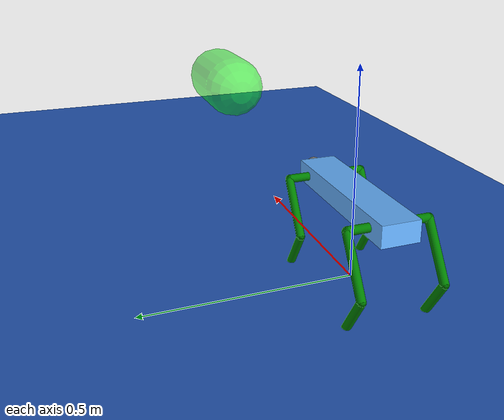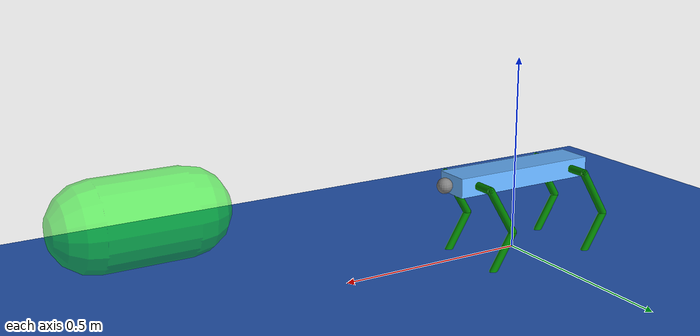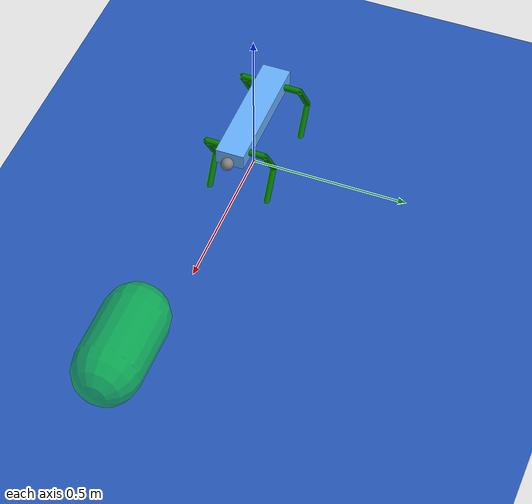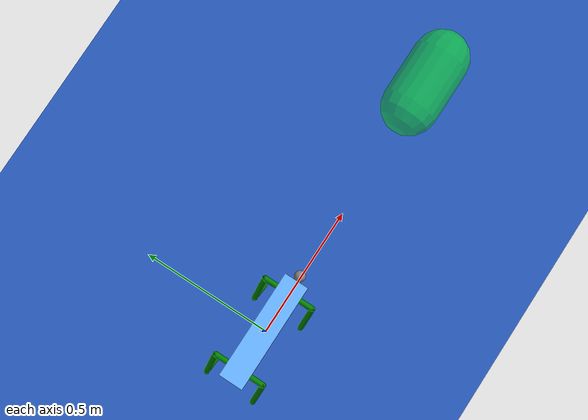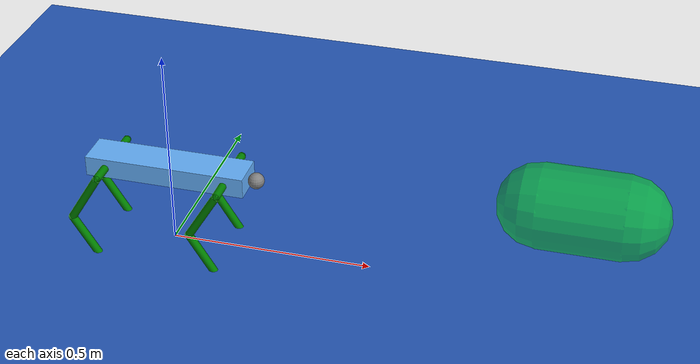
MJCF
<mujoco>
    <include file="../common.xml"/>

    <size memory="1M" />

    <default>
        <default class="circuit">
          <geom rgba="0.6 0 0.6 1" />
        </default>
    </default>

    <custom>
        <text name="task_transition" data="Quadruped|Walk|Path" />
        <numeric name="agent_planner" data="2 " />
        <numeric name="agent_horizon" data="0.35" />
        <numeric name="agent_timestep" data="0.01" />
        <numeric name="sampling_spline_points" data="3" />
        <numeric name="sampling_trajectories" data="60"/>
        <numeric name="sampling_exploration" data="0.04" />
        <numeric name="gradient_spline_points" data="5" />

        <numeric name="residual_select_Gait" data="1"/>
        <text name="residual_list_Gait" data="Stand|Walk|Trot|Canter|Gallop"/>
        <numeric name="residual_select_Gait switch" data="0"/>
        <text name="residual_list_Gait switch" data="Manual|Automatic"/>
        <numeric name="residual_Cadence" data="2 0 4" />
        <numeric name="residual_Amplitude" data=".06 0 0.1" />
        <numeric name="residual_Duty ratio" data="0 0 1"/>
        <numeric name="residual_Walk speed" data="0 0 4"/>
        <numeric name="residual_Walk turn" data="0 -2 2"/>
        <numeric name="residual_Heading" data="0 -3.14 3.14" />
        <numeric name="residual_select_Path stage" data="0" />
        <text name="residual_list_Path stage" data="Loop|Stage1|Stage2|Stage3|Stage4|Stage5" />
    </custom>

    <visual>
        <headlight diffuse="0.6 0.6 0.6"  ambient="0.3 0.3 0.3" specular="0 0 0"/>
        <global azimuth="-90"/>
    </visual>

    <statistic extent="1" center="0 0 .3"/>

    <worldbody>
        <light pos="0 0 1.5" dir="0 0 -1" diffuse="0.5 0.5 0.5" specular="0.3 0.3 0.3"
        directional="true" castshadow="false"/>

        <geom name="floor" size="0 0 0.1" pos="0 0 -0.01" type="plane" material="blue_grid"/>

        <body name="goal" mocap="true" pos="1 0 0.25" quat="1 0 0 0">
            <geom type="capsule" size="0.1 0.1 0.05" contype="0" conaffinity="0" rgba="0 1 0 .5" fromto="-0.1 0 0 0.1 0 0"/>
        </body>

    </worldbody>

    <include file="robot_3_dof.xml"/>

    <actuator>
        <motor name="FL_Abduction" joint="AbductionMotor_FL" gear="1" ctrllimited="true" ctrlrange="-10 10"/>
        <motor name="FL_Up" joint="HipMotor_FL" gear="1" ctrllimited="true" ctrlrange="-10 10"/>
        <motor name="FL_Down" joint="KneeMotor_FL" gear="1" ctrllimited="true" ctrlrange="-10 10"/>

        <motor name="FR_Abduction" joint="AbductionMotor_FR" gear="1" ctrllimited="true" ctrlrange="-10 10"/>
        <motor name="FR_Up" joint="HipMotor_FR" gear="1" ctrllimited="true" ctrlrange="-10 10"/>
        <motor name="FR_Down" joint="KneeMotor_FR" gear="1" ctrllimited="true" ctrlrange="-10 10"/>

        <motor name="RL_Abduction" joint="AbductionMotor_RL" gear="1" ctrllimited="true" ctrlrange="-10 10"/>
        <motor name="RL_Up" joint="HipMotor_RL" gear="1" ctrllimited="true" ctrlrange="-10 10"/>
        <motor name="RL_Down" joint="KneeMotor_RL" gear="1" ctrllimited="true" ctrlrange="-10 10"/>

        <motor name="RR_Abduction" joint="AbductionMotor_RR" gear="1" ctrllimited="true" ctrlrange="-10 10"/>
        <motor name="RR_Up" joint="HipMotor_RR" gear="1" ctrllimited="true" ctrlrange="-10 10"/>
        <motor name="RR_Down" joint="KneeMotor_RR" gear="1" ctrllimited="true" ctrlrange="-10 10"/>
    </actuator>

    <sensor>
        <user name="Upright" dim="3" user="6 1 0 3 0.05" />
        <user name="Height" dim="1" user="6 1 0 3 0.04" />
        <user name="Position" dim="3" user="2 0.2 0 3 0.1" />
        <user name="Gait" dim="4" user="6 2 0 10 0.03" />
        <user name="Balance" dim="2" user="2 0.2 0 0.3 0.1" />
        <user name="Effort" dim="12" user="0 0.06 0.0 0.1" />
        <user name="Posture" dim="12" user="0 0.02 0.0 0.1" />
        <user name="Orientation" dim="2" user="0 0.1 0 2" />
        <user name="Angmom" dim="3" user="0 0 0 .03" />
        <user name="Consistency" dim="1" user="6 0.1 0 1 0.05"/>

        <framepos name="trace0" objtype="site" objname="head" />
        <subtreecom name="torso_subtreecom" body="main_body" />
        <subtreelinvel name="torso_subtreelinvel" body="main_body"/>
        <subtreeangmom name="torso_angmom" body="main_body"/>
        <framequat     name="orientation" objtype="body" objname="main_body"/>
        <touch name="Foot_FL_sensor" site="Foot_FL_contact"/>
        <touch name="Foot_FR_sensor" site="Foot_FR_contact"/>
        <touch name="Foot_RL_sensor" site="Foot_RL_contact"/>
        <touch name="Foot_RR_sensor" site="Foot_RR_contact"/>
    </sensor>

    <keyframe>
        <!-- Path Stages -->
        <key mpos="1 0 0.25" mquat="1 0 0 0" />

        <!-- circuit -->

        <!-- turn 0.0m -->
        <key mpos="0.50 -5.00 0.25" mquat="0.707106781186548 0 0 -0.707106781186547" />

        <!-- turn 0.5 m -->

        <!-- inclination 5 deg, goalY:0.685, goalX: 5,981 -->

        <!-- inclination 10 deg goalY:1.118, goalX: 5,924-->

        <!-- inclination 15 deg goalY:1.544, goalX: 5,824-->

        <!-- last twelve values are the robot joint angles -->
        <key name="home"
        qpos="0 0 0.2
              1 0 0 0
              0 0 0
              0 0 0
              0 0 0
              0 0 0"/>

      </keyframe>

</mujoco>

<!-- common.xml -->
<mujoco>

    <visual>
        <headlight ambient=".4 .4 .4" diffuse=".8 .8 .8" specular="0.1 0.1 0.1"/>
        <map znear=".01"/>
        <quality shadowsize="2048"/>
        <global elevation="-15"/>
    </visual>

    <asset>
        <texture name="blue_grid" type="2d" builtin="checker" rgb1=".02 .14 .44" rgb2=".27 .55 1" width="300" height="300" mark="edge" markrgb="1 1 1"/>
        <material name="blue_grid" texture="blue_grid" texrepeat="1 1" texuniform="true" reflectance=".2"/>

        <texture name="grey_grid" type="2d" builtin="checker" rgb1=".26 .26 .26" rgb2=".6 .6 .6" width="300" height="300" mark="edge" markrgb="1 1 1"/>
        <material name="grey_grid" texture="grey_grid" texrepeat="1 1" texuniform="true" reflectance=".2"/>
        <texture name="skybox" type="skybox" builtin="gradient" rgb1=".66 .79 1" rgb2=".9 .91 .93" width="800" height="800"/>

        <material name="self" rgba=".7 .5 .3 1"/>
        <material name="self_default" rgba=".7 .5 .3 1"/>
        <material name="self_highlight" rgba="0 .5 .3 1"/>
        <material name="effector" rgba=".7 .4 .2 1"/>
        <material name="effector_default" rgba=".7 .4 .2 1"/>
        <material name="effector_highlight" rgba="0 .5 .3 1"/>
        <material name="decoration" rgba=".2 .6 .3 1"/>
        <material name="eye" rgba="0 .2 1 1"/>
        <material name="target" rgba=".6 .3 .3 1"/>
        <material name="target_default" rgba=".6 .3 .3 1"/>
        <material name="target_highlight" rgba=".6 .3 .3 .4"/>
        <material name="site" rgba=".5 .5 .5 .3"/>
    </asset>

    <size memory="1M"/>

    <statistic extent="0.4" center="0.3 0.1 0"/>

    <visual>
        <quality shadowsize="8192"/>
        <global azimuth="180" elevation="-30"/>
    </visual>

    <default>
        <geom friction="1.0"/>
    </default>

    <compiler angle="radian" autolimits="true"/>

    <asset>
        <mesh name="apple" file="../../shared_assets/apple/apple.obj" />
        <mesh name="apple_contact0" file="../../shared_assets/apple/contact0.stl"  />
        <mesh name="apple_contact1" file="../../shared_assets/apple/contact1.stl"  />

        <mesh name="doorknob" file="../../shared_assets/doorknob/doorknob.obj" />

        <mesh name="flashlight" file="../../shared_assets/flashlight/flashlight.obj" />
        <mesh name="flashlight_contact0" file="../../shared_assets/flashlight/contact0.stl"  />
        <mesh name="flashlight_contact1" file="../../shared_assets/flashlight/contact1.stl"  />

        <mesh name="hammer" file="../../shared_assets/hammer/hammer.obj" />
        <mesh name="hammer_contact0" file="../../shared_assets/hammer/contact0.stl"  />
        <mesh name="hammer_contact1" file="../../shared_assets/hammer/contact1.stl"  />

        <mesh name="phone" file="../../shared_assets/phone/phone.obj" />
        <mesh name="phone_contact0" file="../../shared_assets/phone/contact0.stl"  />
        <mesh name="phone_contact1" file="../../shared_assets/phone/contact1.stl"  />
        <mesh name="phone_contact2" file="../../shared_assets/phone/contact2.stl"  />

        <mesh name="stapler" file="../../shared_assets/stapler/stapler.obj" />
        <mesh name="stapler_contact0" file="../../shared_assets/stapler/contact0.stl"  />
        <mesh name="stapler_contact1" file="../../shared_assets/stapler/contact1.stl"  />
        <mesh name="stapler_contact2" file="../../shared_assets/stapler/contact2.stl"  />
        <mesh name="stapler_contact3" file="../../shared_assets/stapler/contact3.stl"  />
        <mesh name="stapler_contact4" file="../../shared_assets/stapler/contact4.stl"  />

        <mesh name="waterbottle" file="../../shared_assets/waterbottle/waterbottle.obj" />
        <mesh name="waterbottle_contact0" file="../../shared_assets/waterbottle/contact0.stl"  />
        <mesh name="waterbottle_contact1" file="../../shared_assets/waterbottle/contact1.stl"  />
    </asset>

</mujoco>

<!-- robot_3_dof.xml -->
<mujoco>

    <default>

        <default class="motor">

            <default class="abduction_motor">
                <joint limited="true" range="-20 30" type="hinge"
                    pos="0 0 0" axis="1 0 0" stiffness="0" damping="0.1" armature="0.0065"
                    group="1" />
            </default>

            <default class="hip_motor">
                <joint limited="true" range="-40 40" type="hinge"
                    pos="0 0 0" axis="0 1 0" stiffness="0" damping="0.1" armature="0.0065"
                    group="1" />
            </default>

            <default class="knee_motor">
                <joint limited="true" range="-30 30" type="hinge"
                    pos="0 0 0" axis="0 1 0" stiffness="0" damping="0.1" armature="0.0065"
                    group="1" />
            </default>

            <default class="AbductionGeom">
                <geom type="capsule" mass="0.001" size="0.01" rgba="0.0 0.5 0.0 1"
                    group="1"/>
            </default>

            <default class="UpLeg">
                <geom type="capsule" mass="0.05" size="0.01" fromto="0 0 0 -0.14 0 0" rgba="0.0 0.5 0.0 1"
                    group="1" />
            </default>

            <default class="DownLeg">
                <geom type="capsule" mass="0.05" size="0.01" fromto="0 0 0 0.14 0 0" rgba="0.0 0.5 0.0 1"
                    group="1" />
            </default>

            <default class="Foot">
                <geom type="sphere" mass="0.001" size="0.02" rgba="1.0 1.0 0.1 1" friction="2 0.02 0.01"
                    group="1"/>
            </default>
        </default>
    </default>

    <worldbody>
        <body name="main_body" pos="0 0 0.2" euler="0 0 0" >
            <joint name="rail" type="free"/>

            <geom name="box" group="1" mass="3" type="box" size="0.2 0.045 0.025" rgba="0.4 0.7 1.0 1"/>
            <site name="imu" size="0.02" pos="0 0 0"/>
            <site name="head" pos=".22 0 0" size="0.02"/>

            <body name="FL" pos="0.1505 0.045 0">

                <body name="LegFrame_FL">
                    <joint name="AbductionMotor_FL" class="abduction_motor"/>
                    <geom name="Abduction_FL" class="AbductionGeom" fromto="0 0 0 0 0.05 0"/>

                    <body name="UpLegFrame_FL" pos="0 0.05 0" euler="0 -45 0">
                        <joint name="HipMotor_FL" class="hip_motor" />
                        <geom name="UpLeg_FL" class="UpLeg"/>

                        <body name="DownLegFrame_FL" pos="-0.14 0 0" euler="0 90 0">
                            <joint name="KneeMotor_FL" class="knee_motor" />
                            <geom name="DownLeg_FL" class="DownLeg"/>

                            <body name="FootFrame_FL" pos="0.14 0 0">
                                <geom name="Foot_FL" class="Foot"/>
                                <site name="Foot_FL_contact" size="0.021"/>
                            </body>
                        </body>
                    </body>
                </body>

            </body>

            <body name="FR" pos="0.1505 -0.045 0">
                <body name="LegFrame_FR">
                    <joint name="AbductionMotor_FR" class="abduction_motor"/>
                    <geom name="Abduction_FR" class="AbductionGeom" fromto="0 0 0 0 -0.05 0"/>

                    <body name="UpLegFrame_FR" pos="0 -0.05 0" euler="0 -45 0">
                        <joint name="HipMotor_FR" class="hip_motor" />
                        <geom name="UpLeg_FR" class="UpLeg"/>

                        <body name="DownLegFrame_FR" pos="-0.14 0 0" euler="0 90 0">
                            <joint name="KneeMotor_FR" class="knee_motor"/>
                            <geom name="DownLeg_FR" class="DownLeg"/>

                            <body name="FootFrame_FR" pos="0.14 0 0">
                                <geom name="Foot_FR" class="Foot"/>
                                <site name="Foot_FR_contact" size="0.021"/>
                            </body>
                        </body>
                    </body>
                </body>

            </body>

            <body name="RL" pos="-0.1505 0.045 0">
                <body name="LegFrame_RL">
                    <joint name="AbductionMotor_RL" class="abduction_motor"/>
                    <geom name="Abduction_RL" class="AbductionGeom" fromto="0 0 0 0 0.05 0"/>

                    <body name="UpLegFrame_RL" pos="0 0.05 0" euler="0 -45 0">
                        <joint name="HipMotor_RL" class="hip_motor" />
                        <geom name="UpLeg_RL" class="UpLeg"/>

                        <body name="DownLegFrame_RL" pos="-0.14 0 0" euler="0 90 0">
                            <joint name="KneeMotor_RL" class="knee_motor" />
                            <geom name="DownLeg_RL" class="DownLeg"/>

                            <body name="FootFrame_RL" pos="0.14 0 0">
                                <geom name="Foot_RL" class="Foot"/>
                                <site name="Foot_RL_contact" size="0.021"/>
                            </body>
                        </body>
                    </body>
                </body>

            </body>

            <body name="RR" pos="-0.1505 -0.045 0">
                <body name="LegFrame_RR">
                    <joint name="AbductionMotor_RR" class="abduction_motor"/>
                    <geom name="Abduction_RR" class="AbductionGeom" fromto="0 0 0 0 -0.05 0"/>

                    <body name="UpLegFrame_RR" pos="0 -0.05 0" euler="0 -45 0">
                        <joint name="HipMotor_RR" class="hip_motor" />
                        <geom name="UpLeg_RR" class="UpLeg"/>

                        <body name="DownLegFrame_RR" pos="-0.14 0 0" euler="0 90 0">
                            <joint name="KneeMotor_RR" class="knee_motor" />
                            <geom name="DownLeg_RR" class="DownLeg"/>

                            <body name="FootFrame_RR" pos="0.14 0 0">
                                <geom name="Foot_RR" class="Foot"/>
                                <site name="Foot_RR_contact" size="0.021"/>
                            </body>
                        </body>
                    </body>
                </body>
            </body>

        </body>

    </worldbody>

</mujoco>
